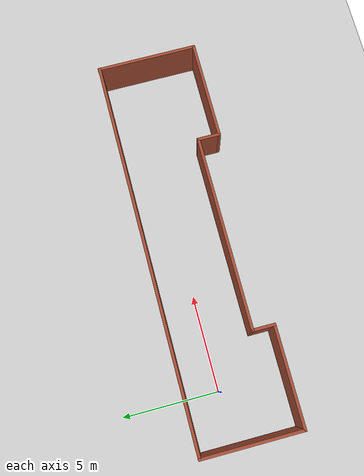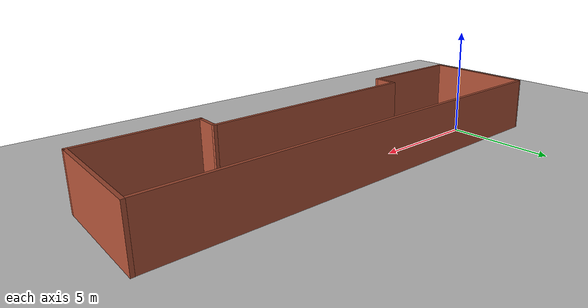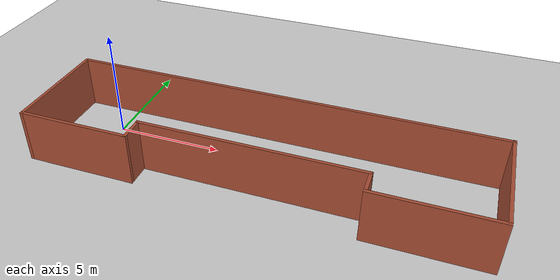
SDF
<sdf version="1.6">
 <world name="default">
  <light name="sun" type="directional">
   <pose>0 0 10 0 -0 0</pose>
   <diffuse>0.8 0.8 0.8 1</diffuse>
   <specular>0.2 0.2 0.2 1</specular>
   <attenuation>
    <range>1000</range>
    <constant>0.9</constant>
    <linear>0.01</linear>
    <quadratic>0.001</quadratic>
   </attenuation>
   <direction>-0.5 0.1 -0.9</direction>
  </light>
  <model name="ground_plane">
   <static>1</static>
   <link name="link">
    <collision name="collision">
     <geometry><plane><normal>0 0 1</normal><size>100 100</size></plane></geometry>
     <surface><friction><ode><mu>100</mu><mu2>50</mu2></ode></friction></surface>
    </collision>
    <visual name="visual">
     <cast_shadows>0</cast_shadows>
     <geometry><plane><normal>0 0 1</normal><size>100 100</size></plane></geometry>
     <material>
      <script><uri>file://media/materials/scripts/gazebo.material</uri><name>Gazebo/Grey</name></script>
     </material>
    </visual>
   </link>
  </model>
  <gravity>0 0 -9.8</gravity>
  <magnetic_field>6e-06 2.3e-05 -4.2e-05</magnetic_field>
  <atmosphere type="adiabatic"/>
  <physics name="default_physics" default="0" type="ode">
   <max_step_size>0.001</max_step_size>
   <real_time_factor>1</real_time_factor>
   <real_time_update_rate>1000</real_time_update_rate>
  </physics>
  <scene><ambient>0.4 0.4 0.4 1</ambient><background>0.7 0.7 0.7 1</background><shadows>1</shadows></scene>
  <audio><device>default</device></audio>
  <spherical_coordinates>
   <surface_model>EARTH_WGS84</surface_model>
   <latitude_deg>0</latitude_deg>
   <longitude_deg>0</longitude_deg>
   <elevation>0</elevation>
   <heading_deg>0</heading_deg>
  </spherical_coordinates>
  <model name="fake_bridge_girder">
   <pose>7.44946 -0.819017 0 0 -0 0</pose>
   <link name="Wall_27">
    <collision name="Wall_27_Collision">
     <geometry><box><size>20.35 0.15 2.5</size></box></geometry>
     <pose>0 0 1.25 0 -0 0</pose>
    </collision>
    <visual name="Wall_27_Visual">
     <pose>0 0 1.25 0 -0 0</pose>
     <geometry><box><size>20.35 0.15 2.5</size></box></geometry>
     <material>
      <script><uri>file://media/materials/scripts/gazebo.material</uri><name>Gazebo/Bricks</name></script>
      <ambient>1 1 1 1</ambient>
     </material>
     <meta><layer>0</layer></meta>
    </visual>
    <pose>0.05 2.55 0 0 -0 0</pose>
   </link>
   <link name="Wall_28">
    <collision name="Wall_28_Collision">
     <geometry><box><size>5.27645 0.15 2.5</size></box></geometry>
     <pose>0 0 1.25 0 -0 0</pose>
    </collision>
    <visual name="Wall_28_Visual">
     <pose>0 0 1.25 0 -0 0</pose>
     <geometry><box><size>5.27645 0.15 2.5</size></box></geometry>
     <material>
      <script><uri>file://media/materials/scripts/gazebo.material</uri><name>Gazebo/Bricks</name></script>
      <ambient>1 1 1 1</ambient>
     </material>
     <meta><layer>0</layer></meta>
    </visual>
    <pose>10.15 -0 0 0 -0 -1.5708</pose>
   </link>
   <link name="Wall_29">
    <collision name="Wall_29_Collision">
     <geometry><box><size>5.25 0.15 2.5</size></box></geometry>
     <pose>0 0 1.25 0 -0 0</pose>
    </collision>
    <visual name="Wall_29_Visual">
     <pose>0 0 1.25 0 -0 0</pose>
     <geometry><box><size>5.25 0.15 2.5</size></box></geometry>
     <material>
      <script><uri>file://media/materials/scripts/gazebo.material</uri><name>Gazebo/Bricks</name></script>
      <ambient>1 1 1 1</ambient>
     </material>
     <meta><layer>0</layer></meta>
    </visual>
    <pose>7.6 -2.56323 0 0 -0 3.14159</pose>
   </link>
   <link name="Wall_30">
    <collision name="Wall_30_Collision">
     <geometry><box><size>1.25 0.15 2.5</size></box></geometry>
     <pose>0 0 1.25 0 -0 0</pose>
    </collision>
    <visual name="Wall_30_Visual">
     <pose>0 0 1.25 0 -0 0</pose>
     <geometry><box><size>1.25 0.15 2.5</size></box></geometry>
     <material>
      <script><uri>file://media/materials/scripts/gazebo.material</uri><name>Gazebo/Bricks</name></script>
      <ambient>1 1 1 1</ambient>
     </material>
     <meta><layer>0</layer></meta>
    </visual>
    <pose>5.05 -2.01322 0 0 -0 1.5708</pose>
   </link>
   <link name="Wall_31">
    <collision name="Wall_31_Collision">
     <geometry><box><size>10.25 0.15 2.5</size></box></geometry>
     <pose>0 0 1.25 0 -0 0</pose>
    </collision>
    <visual name="Wall_31_Visual">
     <pose>0 0 1.25 0 -0 0</pose>
     <geometry><box><size>10.25 0.15 2.5</size></box></geometry>
     <material>
      <script><uri>file://media/materials/scripts/gazebo.material</uri><name>Gazebo/Bricks</name></script>
      <ambient>1 1 1 1</ambient>
     </material>
     <meta><layer>0</layer></meta>
    </visual>
    <pose>0 -1.46322 0 0 -0 3.14159</pose>
   </link>
   <link name="Wall_32">
    <collision name="Wall_32_Collision">
     <geometry><box><size>1.25 0.15 2.5</size></box></geometry>
     <pose>0 0 1.25 0 -0 0</pose>
    </collision>
    <visual name="Wall_32_Visual">
     <pose>0 0 1.25 0 -0 0</pose>
     <geometry><box><size>1.25 0.15 2.5</size></box></geometry>
     <material>
      <script><uri>file://media/materials/scripts/gazebo.material</uri><name>Gazebo/Bricks</name></script>
      <ambient>1 1 1 1</ambient>
     </material>
     <meta><layer>0</layer></meta>
    </visual>
    <pose>-5.05 -2.01322 0 0 -0 -1.5708</pose>
   </link>
   <link name="Wall_33">
    <collision name="Wall_33_Collision">
     <geometry><box><size>5.25 0.15 2.5</size></box></geometry>
     <pose>0 0 1.25 0 -0 0</pose>
    </collision>
    <visual name="Wall_33_Visual">
     <pose>0 0 1.25 0 -0 0</pose>
     <geometry><box><size>5.25 0.15 2.5</size></box></geometry>
     <material>
      <script><uri>file://media/materials/scripts/gazebo.material</uri><name>Gazebo/Bricks</name></script>
      <ambient>1 1 1 1</ambient>
     </material>
     <meta><layer>0</layer></meta>
    </visual>
    <pose>-7.6 -2.56323 0 0 -0 3.14159</pose>
   </link>
   <link name="Wall_34">
    <collision name="Wall_34_Collision">
     <geometry><box><size>5.25 0.15 2.5</size></box></geometry>
     <pose>0 0 1.25 0 -0 0</pose>
    </collision>
    <visual name="Wall_34_Visual">
     <pose>0 0 1.25 0 -0 0</pose>
     <geometry><box><size>5.25 0.15 2.5</size></box></geometry>
     <material>
      <script><uri>file://media/materials/scripts/gazebo.material</uri><name>Gazebo/Bricks</name></script>
      <ambient>1 1 1 1</ambient>
     </material>
     <meta><layer>0</layer></meta>
    </visual>
    <pose>-10.15 -0.013225 0 0 -0 1.5708</pose>
   </link>
   <static>1</static>
  </model>
 </world>
</sdf>
